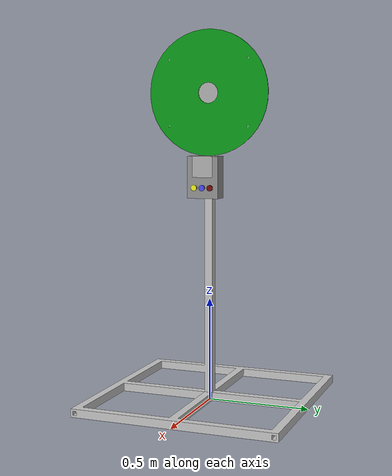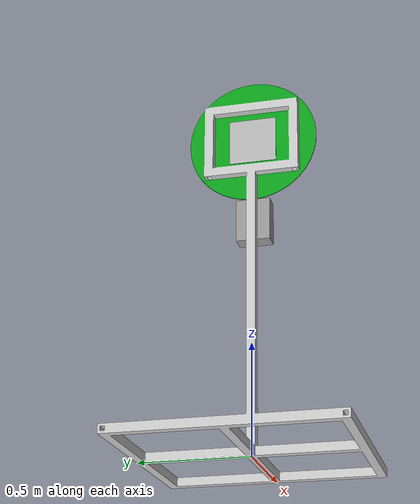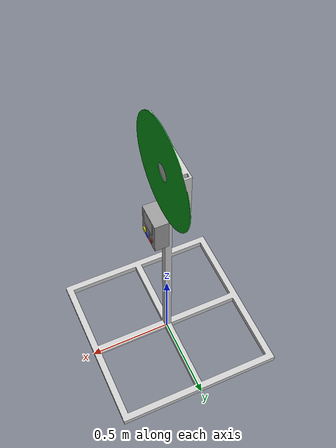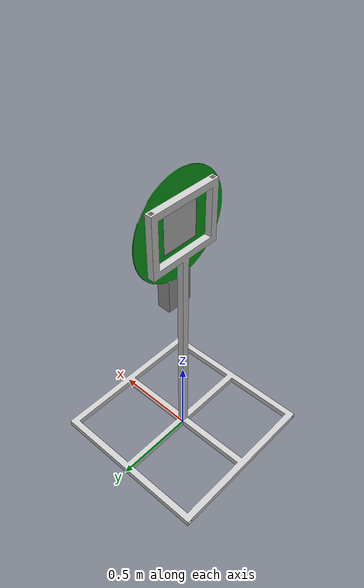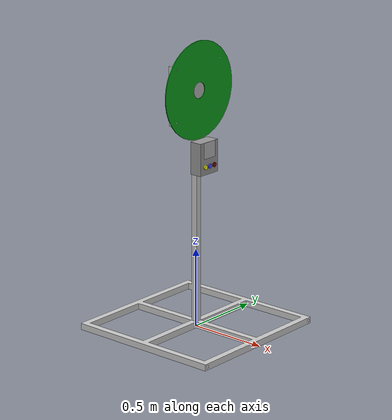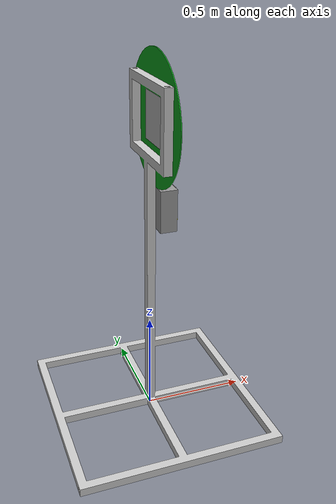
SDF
<?xml version="1.0" ?>
<sdf version="1.5">
  <model name='tc6_small_target_2'>

  <include>
    <uri>model://tc6_small_target</uri>
    <pose>0 0 0 0 0 0</pose>
  </include>

  <include>
    <uri>model://tc6_sensor_box</uri>
    <pose>0.1 0 1.0 0 0 0</pose>
  </include>

  <include>
    <uri>model://apriltag_2</uri>
    <pose>0.105 0 1.1 0 0 0</pose>
  </include>

  <include>
    <uri>model://tc6_sensor</uri>
    <pose>0.02 0 1.5 0 0 0</pose>
  </include>

  <joint name="box_joint" type="fixed">
      <child>tc6_sensor_box::box</child>
      <parent>tc6_small_target::tc6_small_target</parent>
  </joint>

  <joint name="tag_joint" type="fixed">
      <child>apriltag_2::link</child>
      <parent>tc6_sensor_box::box</parent>
  </joint>

  <joint name="sensor_joint" type="fixed">
      <child>tc6_sensor::link_pcb_copper</child>
      <parent>tc6_small_target::tc6_small_target</parent>
  </joint>

  </model>
</sdf>

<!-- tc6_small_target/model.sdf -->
<sdf version="1.5">
  <model name='tc6_small_target'>
    <link name='tc6_small_target'>
      <pose>0 0 0 1.5708 0 0</pose>
      <inertial>
        <mass>11.405</mass>
        <inertia>
          <ixx>5.84618</ixx>
          <ixy>-1.97357e-18</ixy>
          <ixz>0.0305469</ixz>
          <iyy>5.77131</iyy>
          <iyz>-1.85975e-16</iyz>
          <izz>1.65146</izz>
        </inertia>
      </inertial>
      <collision name='tc6_small_target_collision'>
        <geometry>
          <mesh>
            <scale>1 1 1</scale>
            <uri>model://tc6_small_target/meshes/tc6_small_target.dae</uri>
          </mesh>
        </geometry>
      </collision>
      <visual name='tc6_small_target_visual'>
        <geometry>
          <mesh>
            <scale>1 1 1</scale>
            <uri>model://tc6_small_target/meshes/tc6_small_target.dae</uri>
          </mesh>
        </geometry>
      </visual>
    </link>
  </model>
</sdf>

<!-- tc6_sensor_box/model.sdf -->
<sdf version='1.5'>
  <model name='tc6_sensor_box'>
    <static>true</static>
    <link name='box'>
      <pose>-0.037286 0 0.1 0 -0 0</pose>
      <visual name='visual'>
        <geometry>
          <box>
            <size>0.08 0.155 0.2</size>
          </box>
        </geometry>
        <material>
          <lighting>1</lighting>
          <script>
            <uri>file://media/materials/scripts/gazebo.material</uri>
            <name>Gazebo/Grey</name>
          </script>
          <shader type='vertex'>
            <normal_map>__default__</normal_map>
          </shader>
          <ambient>0.194 0.187 0.169 1</ambient>
          <diffuse>0.7 0.7 0.7 1</diffuse>
          <specular>0.01 0.01 0.01 1</specular>
          <emissive>0 0 0 1</emissive>
        </material>
        <transparency>0</transparency>
        <cast_shadows>1</cast_shadows>
      </visual>
      <collision name='collision'>
        <geometry>
          <box>
            <size>0.08 0.155 0.2</size>
          </box>
        </geometry>
      </collision>
    </link>
    <link name='pilot_lamp_blue'>
      <pose>0.009714 0 0.05 -3.14159 1.57 -3.14159</pose>
      <visual name='visual'>
        <geometry>
          <cylinder>
            <radius>0.014</radius>
            <length>0.007</length>
          </cylinder>
        </geometry>
        <material>
          <lighting>1</lighting>
          <script>
            <uri>file://media/materials/scripts/gazebo.material</uri>
            <name>Gazebo/Grey</name>
          </script>
          <shader type='vertex'>
            <normal_map>__default__</normal_map>
          </shader>
          <ambient>0 0 1 1</ambient>
          <diffuse>0.3 0.3 1 1</diffuse>
          <specular>0.01 0.01 0.01 1</specular>
          <emissive>0 0 0 1</emissive>
        </material>
        <transparency>0</transparency>
        <cast_shadows>1</cast_shadows>
      </visual>
      <collision name='collision'>
        <geometry>
          <cylinder>
            <radius>0.014</radius>
            <length>0.007</length>
          </cylinder>
        </geometry>
      </collision>
    </link>
    <link name='pilot_lamp_base_0'>
      <pose>0.002714 -0.04 0.05 -3.14159 1.57 -3.14159</pose>
      <visual name='visual'>
        <geometry>
          <cylinder>
            <radius>0.014</radius>
            <length>0.007</length>
          </cylinder>
        </geometry>
        <material>
          <lighting>1</lighting>
          <script>
            <uri>file://media/materials/scripts/gazebo.material</uri>
            <name>Gazebo/Grey</name>
          </script>
          <shader type='vertex'>
            <normal_map>__default__</normal_map>
          </shader>
          <ambient>0 0 0 1</ambient>
          <diffuse>0 0 0 1</diffuse>
          <specular>0 0 0 1</specular>
          <emissive>0 0 0 1</emissive>
        </material>
        <transparency>0</transparency>
        <cast_shadows>1</cast_shadows>
      </visual>
      <collision name='collision'>
        <geometry>
          <cylinder>
            <radius>0.014</radius>
            <length>0.007</length>
          </cylinder>
        </geometry>
      </collision>
    </link>
    <link name='pilot_lamp_yellow'>
      <pose>0.009714 -0.04 0.05 -3.14159 1.57 -3.14159</pose>
      <visual name='visual'>
        <geometry>
          <cylinder>
            <radius>0.014</radius>
            <length>0.007</length>
          </cylinder>
        </geometry>
        <material>
          <lighting>1</lighting>
          <script>
            <uri>file://media/materials/scripts/gazebo.material</uri>
            <name>Gazebo/Grey</name>
          </script>
          <shader type='vertex'>
            <normal_map>__default__</normal_map>
          </shader>
          <ambient>1 1 0.1 1</ambient>
          <diffuse>0.7 0.7 0.7 1</diffuse>
          <specular>0.01 0.01 0.01 1</specular>
          <emissive>0 0 0 1</emissive>
        </material>
        <transparency>0</transparency>
        <cast_shadows>1</cast_shadows>
      </visual>
      <collision name='collision'>
        <geometry>
          <cylinder>
            <radius>0.014</radius>
            <length>0.007</length>
          </cylinder>
        </geometry>
      </collision>
    </link>
    <link name='pilot_lamp_red'>
      <pose>0.009714 0.04 0.05 -3.14159 1.57 -3.14159</pose>
      <visual name='visual'>
        <geometry>
          <cylinder>
            <radius>0.014</radius>
            <length>0.007</length>
          </cylinder>
        </geometry>
        <material>
          <lighting>1</lighting>
          <script>
            <uri>file://media/materials/scripts/gazebo.material</uri>
            <name>Gazebo/Grey</name>
          </script>
          <shader type='vertex'>
            <normal_map>__default__</normal_map>
          </shader>
          <ambient>0.5 0.05 0.05 1</ambient>
          <diffuse>0.3 0.3 0.3 1</diffuse>
          <specular>0.01 0.01 0.01 1</specular>
          <emissive>0 0 0 1</emissive>
        </material>
        <transparency>0</transparency>
        <cast_shadows>1</cast_shadows>
      </visual>
      <collision name='collision'>
        <geometry>
          <cylinder>
            <radius>0.014</radius>
            <length>0.007</length>
          </cylinder>
        </geometry>
      </collision>
    </link>
    <link name='pilot_lamp_base_1'>
      <pose>0.002714 0 0.05 -3.14159 1.57 -3.14159</pose>
      <visual name='visual'>
        <geometry>
          <cylinder>
            <radius>0.014</radius>
            <length>0.007</length>
          </cylinder>
        </geometry>
        <material>
          <lighting>1</lighting>
          <script>
            <uri>file://media/materials/scripts/gazebo.material</uri>
            <name>Gazebo/Grey</name>
          </script>
          <shader type='vertex'>
            <normal_map>__default__</normal_map>
          </shader>
          <ambient>0 0 0 1</ambient>
          <diffuse>0 0 0 1</diffuse>
          <specular>0 0 0 1</specular>
          <emissive>0 0 0 1</emissive>
        </material>
        <transparency>0</transparency>
        <cast_shadows>1</cast_shadows>
      </visual>
      <collision name='collision'>
        <geometry>
          <cylinder>
            <radius>0.014</radius>
            <length>0.007</length>
          </cylinder>
        </geometry>
      </collision>
    </link>
    <link name='pilot_lamp_base_2'>
      <pose>0.002714 0.04 0.05 -3.14159 1.57 -3.14159</pose>
      <visual name='visual'>
        <pose>0 0 0 0 -0 0</pose>
        <geometry>
          <cylinder>
            <radius>0.014</radius>
            <length>0.007</length>
          </cylinder>
        </geometry>
        <material>
          <lighting>1</lighting>
          <script>
            <uri>file://media/materials/scripts/gazebo.material</uri>
            <name>Gazebo/Grey</name>
          </script>
          <shader type='vertex'>
            <normal_map>__default__</normal_map>
          </shader>
          <ambient>0 0 0 1</ambient>
          <diffuse>0 0 0 1</diffuse>
          <specular>0 0 0 1</specular>
          <emissive>0 0 0 1</emissive>
        </material>
        <transparency>0</transparency>
        <cast_shadows>1</cast_shadows>
      </visual>
      <collision name='collision'>
        <geometry>
          <cylinder>
            <radius>0.014</radius>
            <length>0.007</length>
          </cylinder>
        </geometry>
      </collision>
    </link>
    <static>0</static>
    <allow_auto_disable>1</allow_auto_disable>

    <joint name="lamp_base_0_joint" type="fixed">
      <child>pilot_lamp_base_0</child>
      <parent>box</parent>
    </joint>
    <joint name="lamp_yellow_joint" type="fixed">
      <child>pilot_lamp_yellow</child>
      <parent>pilot_lamp_base_0</parent>
    </joint>
    <joint name="lamp_base_1_joint" type="fixed">
      <child>pilot_lamp_base_1</child>
      <parent>box</parent>
    </joint>
    <joint name="lamp_blue_joint" type="fixed">
      <child>pilot_lamp_blue</child>
      <parent>pilot_lamp_base_1</parent>
    </joint>
    <joint name="lamp_base_2_joint" type="fixed">
      <child>pilot_lamp_base_2</child>
      <parent>box</parent>
    </joint>
    <joint name="lamp_red_joint" type="fixed">
      <child>pilot_lamp_red</child>
      <parent>pilot_lamp_base_2</parent>
    </joint>
  </model>
</sdf>

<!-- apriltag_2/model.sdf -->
<sdf version="1.5">
  <model name="apriltag_2">
    <static>true</static>
    <link name="link">
      <pose>0 0 0.05 0 0 0</pose>
      <collision name="collision">
        <geometry>
          <box>
            <size>0.001 0.1 0.1</size>
          </box>
        </geometry>
      </collision>
      <visual name="visual">
        <geometry>
          <box>
            <size>0.001 0.1 0.1</size>
          </box>
        </geometry>
        <material>
          <script>
            <uri>model://apriltag_2/materials/scripts</uri>
            <uri>model://apriltag_2/materials/textures</uri>
            <name>apriltag_2/Diffuse</name>
          </script>
        </material>
      </visual>
    </link>
  </model>
</sdf>

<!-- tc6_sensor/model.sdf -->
<sdf version="1.5">
  <model name="tc6_sensor">
    <static>true</static>
    <link name="link_pcb_top">
      <pose>-0.001 0 0 0 0 0</pose>

      <collision name="collision">
        <geometry>
          <box>
            <size>0.001 0.22 0.22</size>
          </box>
        </geometry>
      </collision>
      <visual name="visual">
        <geometry>
          <box>
            <size>0.001 0.22 0.22</size>
          </box>
        </geometry>
        <material>
          <script>
            <uri>model://tc6_sensor/materials/scripts</uri>
            <uri>model://tc6_sensor/materials/textures</uri>
            <name>tc6_sensor_top/Diffuse</name>
          </script>
        </material>
      </visual>
    </link>
    <link name="link_pcb_copper">
      <pose>0 0 0 0 0 0</pose>

      <collision name="collision">
        <geometry>
          <box>
            <size>0.001 0.22 0.22</size>
          </box>
        </geometry>
      </collision>
      <visual name="visual">
        <geometry>
          <box>
            <size>0.001 0.22 0.22</size>
          </box>
        </geometry>
        <material>
          <script>
            <uri>model://tc6_sensor/materials/scripts</uri>
            <uri>model://tc6_sensor/materials/textures</uri>
            <name>tc6_sensor_copper/Diffuse</name>
          </script>
        </material>
      </visual>
    </link>
  </model>
</sdf>
